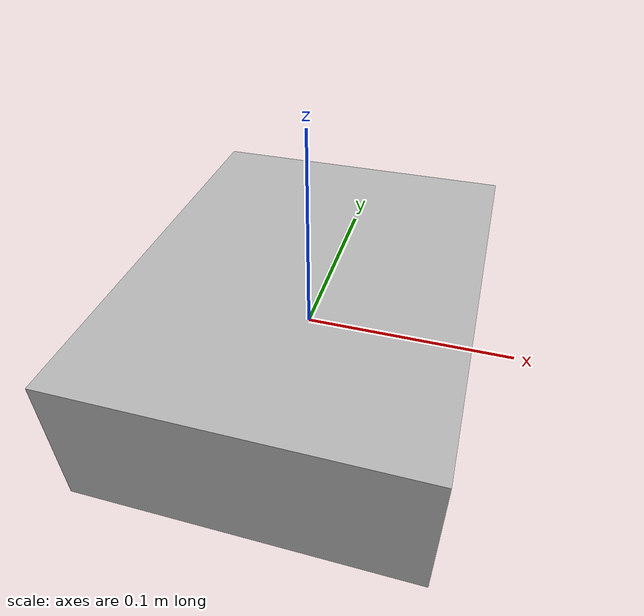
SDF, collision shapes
<?xml version="1.0"?>
<sdf version="1.7">
  <model name="003_cracker_box">
    <link name="base_link_cracker">
      <inertial>
        <mass>0.411</mass>
        <inertia>
          <ixx>0.001736</ixx>
          <ixy>0</ixy>
          <ixz>0</ixz>
          <iyy>0.001098</iyy>
          <iyz>0</iyz>
          <izz>0.002481</izz>
        </inertia>
      </inertial>
      <visual name="base_link_cracker">
        <pose>-0.014 0.103 0.013 1.57 -1.57 0</pose>
        <geometry>
          <mesh>
            <uri>package://drake_models/ycb/meshes/003_cracker_box_textured.obj</uri>
          </mesh>
        </geometry>
      </visual>
      <collision name="box_collision">
        <geometry>
          <box>
            <size>0.158000 0.207400 0.065800</size>
          </box>
        </geometry>
        <drake:proximity_properties>
          <drake:compliant_hydroelastic/>
          <drake:hydroelastic_modulus>
            <!-- 1e7 Pa for objects of size in centimeters of HDPE plastic
             with Young's modulus 1 GPa -->
            1e7
          </drake:hydroelastic_modulus>
          <drake:mesh_resolution_hint>
            <!-- 1 cm mesh resolution for objects of size in centimeters -->
            0.01
          </drake:mesh_resolution_hint>
          <drake:mu_dynamic>0.5</drake:mu_dynamic>
          <drake:mu_static>0.5</drake:mu_static>
          <drake:hunt_crossley_dissipation>
            1.25
          </drake:hunt_crossley_dissipation>
          <drake:relaxation_time>
            0.1
          </drake:relaxation_time>
        </drake:proximity_properties>
      </collision>
      <collision name="point_collision1">
        <pose>0.079500 0.104200 0.033400 0 0 0 </pose>
        <geometry>
          <sphere>
            <radius>1e-7</radius>
          </sphere>
        </geometry>
        <drake:proximity_properties>
          <drake:rigid_hydroelastic/>
          <drake:mesh_resolution_hint>1</drake:mesh_resolution_hint>
          <drake:mu_dynamic>0.5</drake:mu_dynamic>
          <drake:mu_static>0.5</drake:mu_static>
          <drake:hunt_crossley_dissipation>1.25</drake:hunt_crossley_dissipation>
          <drake:relaxation_time>0.1</drake:relaxation_time>
        </drake:proximity_properties>
      </collision>
      <collision name="point_collision2">
        <pose>0.079500 -0.104200 0.033400 0 0 0 </pose>
        <geometry>
          <sphere>
            <radius>1e-7</radius>
          </sphere>
        </geometry>
        <drake:proximity_properties>
          <drake:rigid_hydroelastic/>
          <drake:mesh_resolution_hint>1</drake:mesh_resolution_hint>
          <drake:mu_dynamic>0.5</drake:mu_dynamic>
          <drake:mu_static>0.5</drake:mu_static>
          <drake:hunt_crossley_dissipation>1.25</drake:hunt_crossley_dissipation>
          <drake:relaxation_time>0.1</drake:relaxation_time>
        </drake:proximity_properties>
      </collision>
      <collision name="point_collision3">
        <pose>-0.079500 0.104200 0.033400 0 0 0 </pose>
        <geometry>
          <sphere>
            <radius>1e-7</radius>
          </sphere>
        </geometry>
        <drake:proximity_properties>
          <drake:rigid_hydroelastic/>
          <drake:mesh_resolution_hint>1</drake:mesh_resolution_hint>
          <drake:mu_dynamic>0.5</drake:mu_dynamic>
          <drake:mu_static>0.5</drake:mu_static>
          <drake:hunt_crossley_dissipation>1.25</drake:hunt_crossley_dissipation>
          <drake:relaxation_time>0.1</drake:relaxation_time>
        </drake:proximity_properties>
      </collision>
      <collision name="point_collision4">
        <pose>-0.079500 -0.104200 0.033400 0 0 0 </pose>
        <geometry>
          <sphere>
            <radius>1e-7</radius>
          </sphere>
        </geometry>
        <drake:proximity_properties>
          <drake:rigid_hydroelastic/>
          <drake:mesh_resolution_hint>1</drake:mesh_resolution_hint>
          <drake:mu_dynamic>0.5</drake:mu_dynamic>
          <drake:mu_static>0.5</drake:mu_static>
          <drake:hunt_crossley_dissipation>1.25</drake:hunt_crossley_dissipation>
          <drake:relaxation_time>0.1</drake:relaxation_time>
        </drake:proximity_properties>
      </collision>
      <collision name="point_collision5">
        <pose>0.079500 0.104200 -0.033400 0 0 0 </pose>
        <geometry>
          <sphere>
            <radius>1e-7</radius>
          </sphere>
        </geometry>
        <drake:proximity_properties>
          <drake:rigid_hydroelastic/>
          <drake:mesh_resolution_hint>1</drake:mesh_resolution_hint>
          <drake:mu_dynamic>0.5</drake:mu_dynamic>
          <drake:mu_static>0.5</drake:mu_static>
          <drake:hunt_crossley_dissipation>1.25</drake:hunt_crossley_dissipation>
          <drake:relaxation_time>0.1</drake:relaxation_time>
        </drake:proximity_properties>
      </collision>
      <collision name="point_collision6">
        <pose>0.079500 -0.104200 -0.033400 0 0 0 </pose>
        <geometry>
          <sphere>
            <radius>1e-7</radius>
          </sphere>
        </geometry>
        <drake:proximity_properties>
          <drake:rigid_hydroelastic/>
          <drake:mesh_resolution_hint>1</drake:mesh_resolution_hint>
          <drake:mu_dynamic>0.5</drake:mu_dynamic>
          <drake:mu_static>0.5</drake:mu_static>
          <drake:hunt_crossley_dissipation>1.25</drake:hunt_crossley_dissipation>
          <drake:relaxation_time>0.1</drake:relaxation_time>
        </drake:proximity_properties>
      </collision>
      <collision name="point_collision7">
        <pose>-0.079500 0.104200 -0.033400 0 0 0 </pose>
        <geometry>
          <sphere>
            <radius>1e-7</radius>
          </sphere>
        </geometry>
        <drake:proximity_properties>
          <drake:rigid_hydroelastic/>
          <drake:mesh_resolution_hint>1</drake:mesh_resolution_hint>
          <drake:mu_dynamic>0.5</drake:mu_dynamic>
          <drake:mu_static>0.5</drake:mu_static>
          <drake:hunt_crossley_dissipation>1.25</drake:hunt_crossley_dissipation>
          <drake:relaxation_time>0.1</drake:relaxation_time>
        </drake:proximity_properties>
      </collision>
      <collision name="point_collision8">
        <pose>-0.079500 -0.104200 -0.033400 0 0 0 </pose>
        <geometry>
          <sphere>
            <radius>1e-7</radius>
          </sphere>
        </geometry>
        <drake:proximity_properties>
          <drake:rigid_hydroelastic/>
          <drake:mesh_resolution_hint>1</drake:mesh_resolution_hint>
          <drake:mu_dynamic>0.5</drake:mu_dynamic>
          <drake:mu_static>0.5</drake:mu_static>
          <drake:hunt_crossley_dissipation>1.25</drake:hunt_crossley_dissipation>
          <drake:relaxation_time>0.1</drake:relaxation_time>
        </drake:proximity_properties>
      </collision>
    </link>
  </model>
</sdf>
